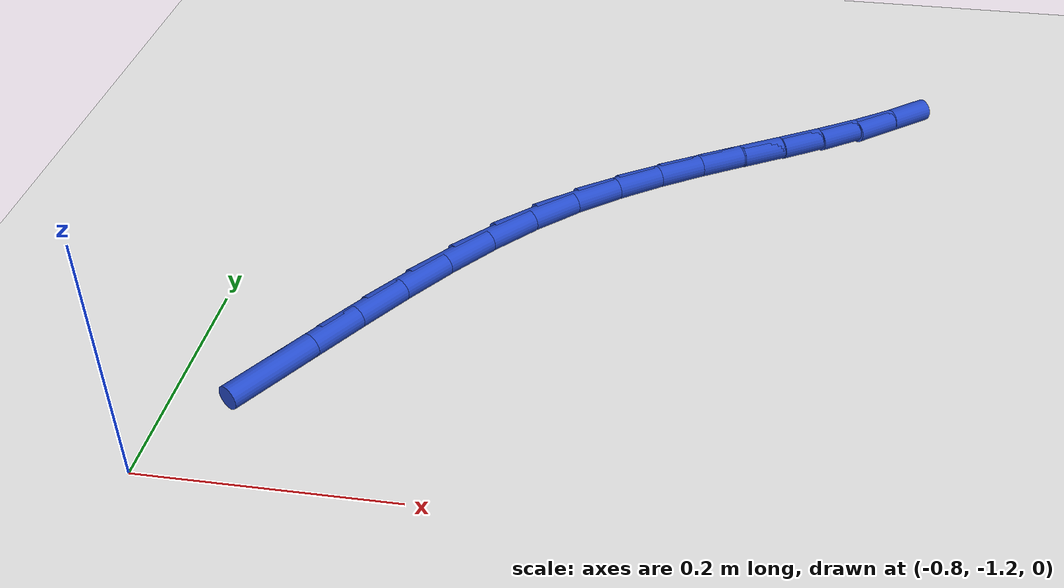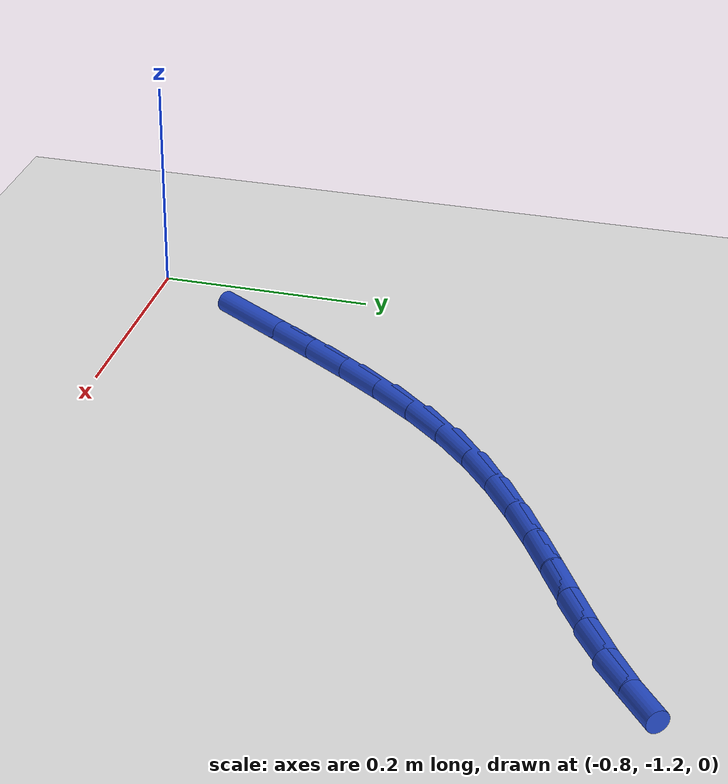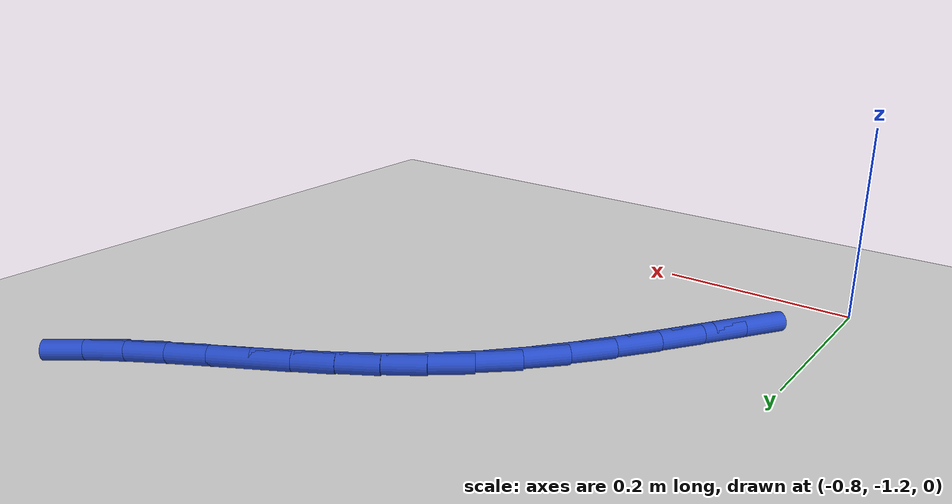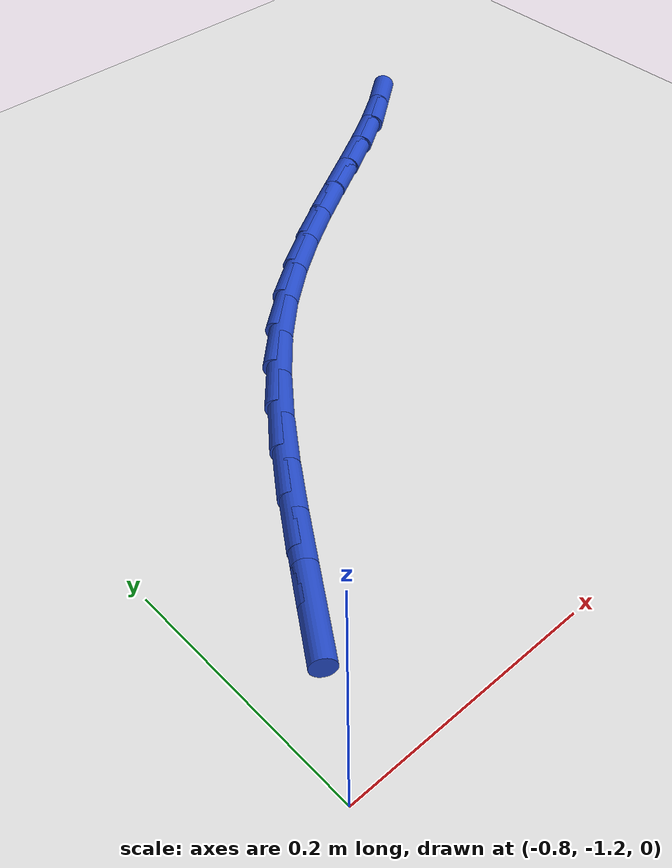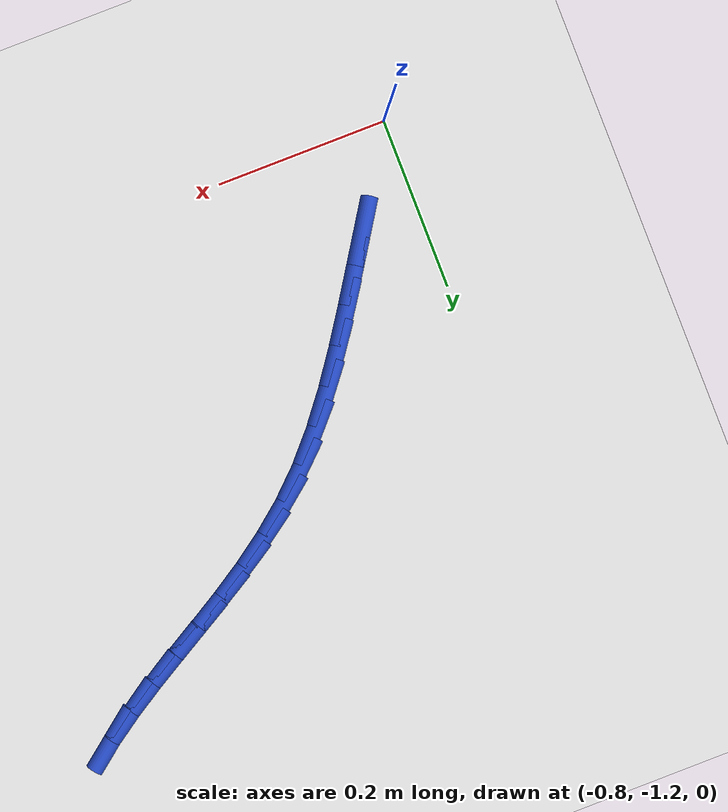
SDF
<sdf version="1.6">
 <world name="default">
  <model name="ground_plane">
   <static>1</static>
   <link name="link">
    <collision name="collision">
     <geometry><plane><normal>0 0 1</normal><size>100 100</size></plane></geometry>
     <surface><friction><ode><mu>100</mu><mu2>50</mu2></ode></friction></surface>
    </collision>
    <visual name="visual">
     <cast_shadows>0</cast_shadows>
     <geometry><plane><normal>0 0 1</normal><size>100 100</size></plane></geometry>
     <material>
      <script><uri>file://media/materials/scripts/gazebo.material</uri><name>Gazebo/WhiteGlow</name></script>
     </material>
    </visual>
   </link>
  </model>
  <model name="line">
   <link name="link_157">
    <pose>-0.7314924092848578 -1.0913494321037913 0.01 0 1.57 0.9986337378834356</pose>
    <collision name="collision">
     <geometry><cylinder><radius>0.01</radius><length>0.08</length></cylinder></geometry>
    </collision>
    <visual name="visual">
     <material>
      <script><name>Gazebo/Blue</name><uri>file://media/materials/scripts/gazebo.material</uri></script>
     </material>
     <geometry><cylinder><radius>0.01</radius><length>0.08</length></cylinder></geometry>
    </visual>
   </link>
   <link name="link_158">
    <pose>-0.7065627967434182 -1.0526402877859102 0.01 0 1.57 0.9966917227298241</pose>
    <collision name="collision">
     <geometry><cylinder><radius>0.01</radius><length>0.08</length></cylinder></geometry>
    </collision>
    <visual name="visual">
     <material>
      <script><name>Gazebo/Blue</name><uri>file://media/materials/scripts/gazebo.material</uri></script>
     </material>
     <geometry><cylinder><radius>0.01</radius><length>0.08</length></cylinder></geometry>
    </visual>
   </link>
   <link name="link_159">
    <pose>-0.6810837561655964 -1.0132462970513618 0.01 0 1.57 0.9807102596116681</pose>
    <collision name="collision">
     <geometry><cylinder><radius>0.01</radius><length>0.08</length></cylinder></geometry>
    </collision>
    <visual name="visual">
     <material>
      <script><name>Gazebo/Blue</name><uri>file://media/materials/scripts/gazebo.material</uri></script>
     </material>
     <geometry><cylinder><radius>0.01</radius><length>0.08</length></cylinder></geometry>
    </visual>
   </link>
   <link name="link_160">
    <pose>-0.6548187955228854 -0.9740261490623993 0.01 0 1.57 0.9503647263495909</pose>
    <collision name="collision">
     <geometry><cylinder><radius>0.01</radius><length>0.08</length></cylinder></geometry>
    </collision>
    <visual name="visual">
     <material>
      <script><name>Gazebo/Blue</name><uri>file://media/materials/scripts/gazebo.material</uri></script>
     </material>
     <geometry><cylinder><radius>0.01</radius><length>0.08</length></cylinder></geometry>
    </visual>
   </link>
   <link name="link_161">
    <pose>-0.6275314227867794 -0.9358385329812786 0.01 0 1.57 0.9043557316100785</pose>
    <collision name="collision">
     <geometry><cylinder><radius>0.01</radius><length>0.08</length></cylinder></geometry>
    </collision>
    <visual name="visual">
     <material>
      <script><name>Gazebo/Blue</name><uri>file://media/materials/scripts/gazebo.material</uri></script>
     </material>
     <geometry><cylinder><radius>0.01</radius><length>0.08</length></cylinder></geometry>
    </visual>
   </link>
   <link name="link_162">
    <pose>-0.5989851459287724 -0.8995421379702547 0.01 0 1.57 0.8404598168555072</pose>
    <collision name="collision">
     <geometry><cylinder><radius>0.01</radius><length>0.08</length></cylinder></geometry>
    </collision>
    <visual name="visual">
     <material>
      <script><name>Gazebo/Blue</name><uri>file://media/materials/scripts/gazebo.material</uri></script>
     </material>
     <geometry><cylinder><radius>0.01</radius><length>0.08</length></cylinder></geometry>
    </visual>
   </link>
   <link name="link_163">
    <pose>-0.568943472920358 -0.8659956531915827 0.01 0 1.57 0.7584348146133458</pose>
    <collision name="collision">
     <geometry><cylinder><radius>0.01</radius><length>0.08</length></cylinder></geometry>
    </collision>
    <visual name="visual">
     <material>
      <script><name>Gazebo/Blue</name><uri>file://media/materials/scripts/gazebo.material</uri></script>
     </material>
     <geometry><cylinder><radius>0.01</radius><length>0.08</length></cylinder></geometry>
    </visual>
   </link>
   <link name="link_164">
    <pose>-0.5372199355216201 -0.8359383382751365 0.01 0 1.57 0.6786928389617879</pose>
    <collision name="collision">
     <geometry><cylinder><radius>0.01</radius><length>0.08</length></cylinder></geometry>
    </collision>
    <visual name="visual">
     <material>
      <script><name>Gazebo/Blue</name><uri>file://media/materials/scripts/gazebo.material</uri></script>
     </material>
     <geometry><cylinder><radius>0.01</radius><length>0.08</length></cylinder></geometry>
    </visual>
   </link>
   <link name="link_165">
    <pose>-0.5040235044617157 -0.8091653602002126 0.01 0 1.57 0.6136796976077852</pose>
    <collision name="collision">
     <geometry><cylinder><radius>0.01</radius><length>0.08</length></cylinder></geometry>
    </collision>
    <visual name="visual">
     <material>
      <script><name>Gazebo/Blue</name><uri>file://media/materials/scripts/gazebo.material</uri></script>
     </material>
     <geometry><cylinder><radius>0.01</radius><length>0.08</length></cylinder></geometry>
    </visual>
   </link>
   <link name="link_166">
    <pose>-0.4697509822124565 -0.7850234461572838 0.01 0 1.57 0.5652106382856127</pose>
    <collision name="collision">
     <geometry><cylinder><radius>0.01</radius><length>0.08</length></cylinder></geometry>
    </collision>
    <visual name="visual">
     <material>
      <script><name>Gazebo/Blue</name><uri>file://media/materials/scripts/gazebo.material</uri></script>
     </material>
     <geometry><cylinder><radius>0.01</radius><length>0.08</length></cylinder></geometry>
    </visual>
   </link>
   <link name="link_167">
    <pose>-0.43480030952235665 -0.7628566057526792 0.01 0 1.57 0.5343287693139628</pose>
    <collision name="collision">
     <geometry><cylinder><radius>0.01</radius><length>0.08</length></cylinder></geometry>
    </collision>
    <visual name="visual">
     <material>
      <script><name>Gazebo/Blue</name><uri>file://media/materials/scripts/gazebo.material</uri></script>
     </material>
     <geometry><cylinder><radius>0.01</radius><length>0.08</length></cylinder></geometry>
    </visual>
   </link>
   <link name="link_168">
    <pose>-0.3995694271399328 -0.742008848592729 0.01 0 1.57 0.5217187451264756</pose>
    <collision name="collision">
     <geometry><cylinder><radius>0.01</radius><length>0.08</length></cylinder></geometry>
    </collision>
    <visual name="visual">
     <material>
      <script><name>Gazebo/Blue</name><uri>file://media/materials/scripts/gazebo.material</uri></script>
     </material>
     <geometry><cylinder><radius>0.01</radius><length>0.08</length></cylinder></geometry>
    </visual>
   </link>
   <link name="link_169">
    <pose>-0.3644562758137008 -0.7218241842837634 0.01 0 1.57 0.5279816855690422</pose>
    <collision name="collision">
     <geometry><cylinder><radius>0.01</radius><length>0.08</length></cylinder></geometry>
    </collision>
    <visual name="visual">
     <material>
      <script><name>Gazebo/Blue</name><uri>file://media/materials/scripts/gazebo.material</uri></script>
     </material>
     <geometry><cylinder><radius>0.01</radius><length>0.08</length></cylinder></geometry>
    </visual>
   </link>
   <link name="link_170">
    <pose>-0.32985879629217635 -0.7016466224321126 0.01 0 1.57 0.5537606991223214</pose>
    <collision name="collision">
     <geometry><cylinder><radius>0.01</radius><length>0.08</length></cylinder></geometry>
    </collision>
    <visual name="visual">
     <material>
      <script><name>Gazebo/Blue</name><uri>file://media/materials/scripts/gazebo.material</uri></script>
     </material>
     <geometry><cylinder><radius>0.01</radius><length>0.08</length></cylinder></geometry>
    </visual>
   </link>
   <link name="link_171">
    <pose>-0.29617492932387535 -0.6808201726441062 0.01 0 1.57 0.5996682344723049</pose>
    <collision name="collision">
     <geometry><cylinder><radius>0.01</radius><length>0.08</length></cylinder></geometry>
    </collision>
    <visual name="visual">
     <material>
      <script><name>Gazebo/Blue</name><uri>file://media/materials/scripts/gazebo.material</uri></script>
     </material>
     <geometry><cylinder><radius>0.01</radius><length>0.08</length></cylinder></geometry>
    </visual>
   </link>
   <link name="link_172">
    <pose>-0.2638026156573142 -0.6586888445260749 0.01 0 1.57 0.6659688629047056</pose>
    <collision name="collision">
     <geometry><cylinder><radius>0.01</radius><length>0.08</length></cylinder></geometry>
    </collision>
    <visual name="visual">
     <material>
      <script><name>Gazebo/Blue</name><uri>file://media/materials/scripts/gazebo.material</uri></script>
     </material>
     <geometry><cylinder><radius>0.01</radius><length>0.08</length></cylinder></geometry>
    </visual>
   </link>
  </model>
 </world>
</sdf>
